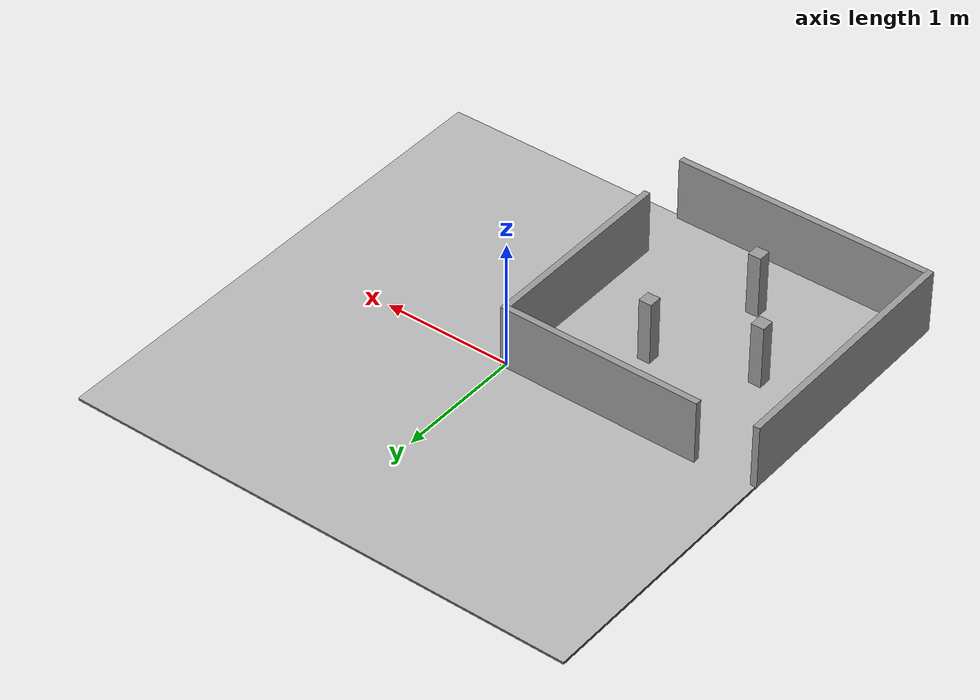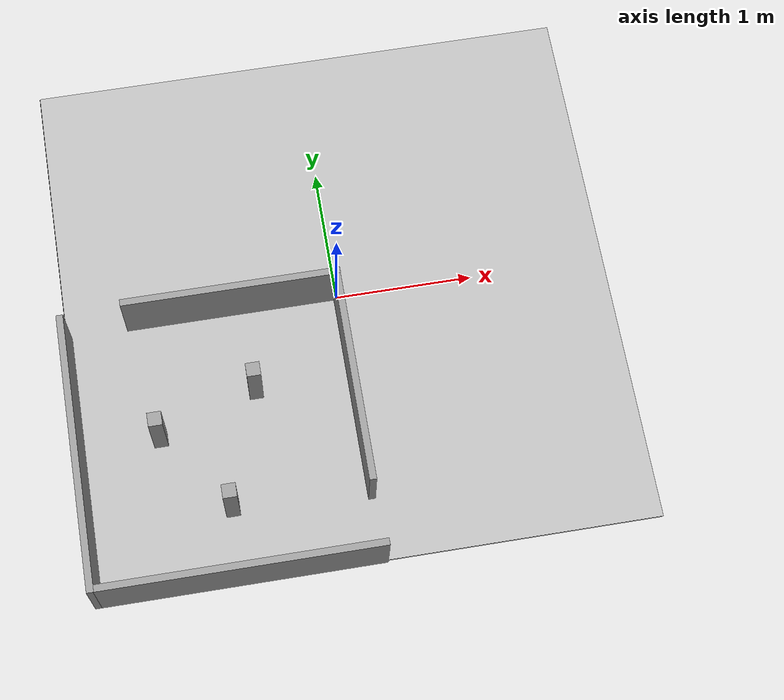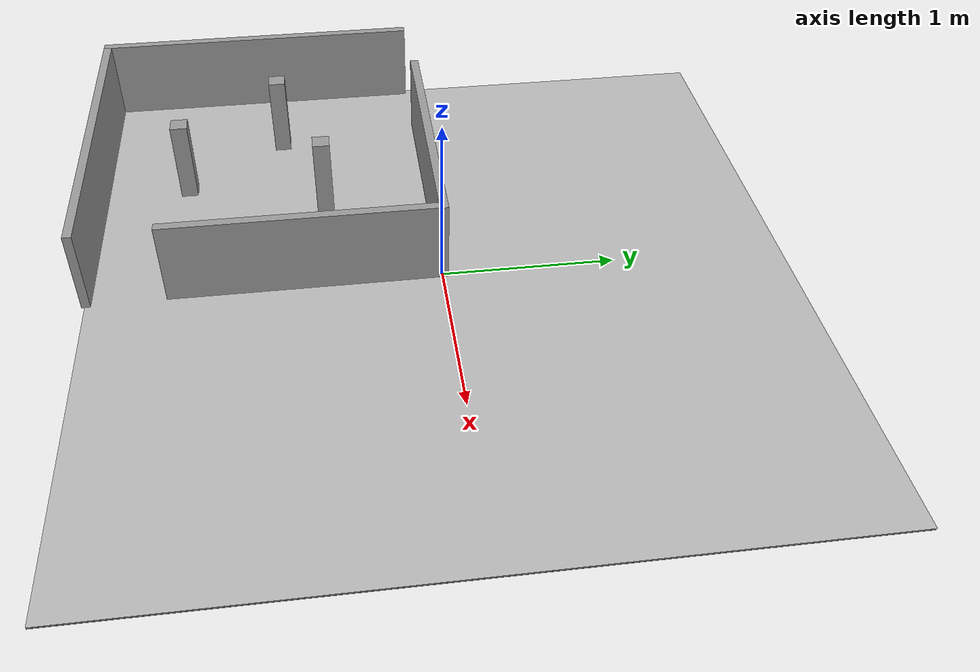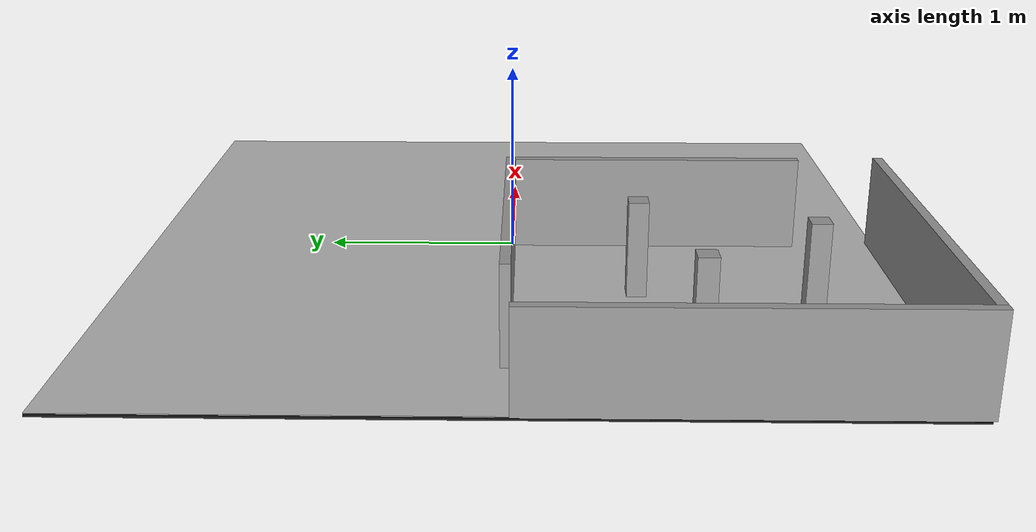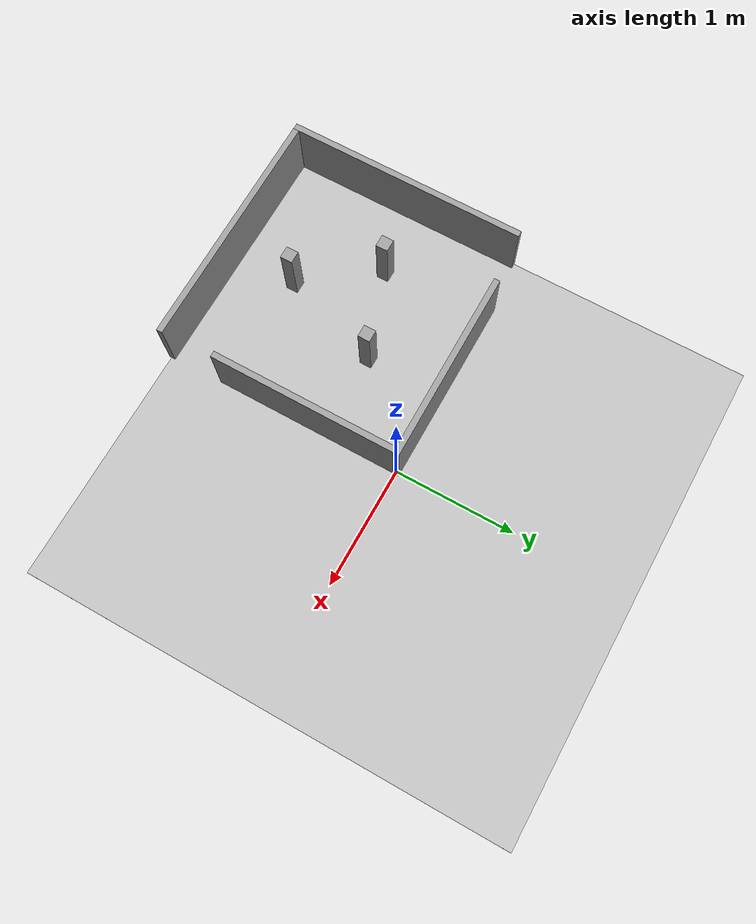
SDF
<sdf version="1.6">
 <world name="default">
  <scene>
   <ambient>0 0 0 1</ambient>
   <shadows>0</shadows>
   <grid>0</grid>
   <background>0.7 0.7 0.7 1</background>
  </scene>
  <model name="course">
   <static>1</static>
   <link name="course_link">
    <collision name="course_collision">
     <geometry><plane><normal>0 0 1</normal><size>4 4</size></plane></geometry>
     <surface><friction><ode><mu>100</mu><mu2>50</mu2></ode></friction></surface>
    </collision>
    <visual name="course_visual">
     <cast_shadows>0</cast_shadows>
     <geometry><plane><normal>0 0 1</normal><size>4 4</size></plane></geometry>
     <material>
      <script>
       <uri>model://course/materials/scripts</uri>
       <uri>model://course/materials/textures</uri>
       <name>course</name>
      </script>
     </material>
    </visual>
   </link>
   <pose>0 0 0 0 -0 1.5708</pose>
  </model>
  <light name="sun" type="directional">
   <pose>0 0 10 0 -0 0</pose>
   <diffuse>0.8 0.8 0.8 1</diffuse>
   <specular>0.1 0.1 0.1 1</specular>
   <attenuation>
    <range>1000</range>
    <constant>0.9</constant>
    <linear>0.01</linear>
    <quadratic>0.001</quadratic>
   </attenuation>
   <direction>-0.5 0.5 -1</direction>
  </light>
  <model name="ground2">
   <pose>-0.003421 -0.000423 -0.01 0 -0 0</pose>
   <static>1</static>
   <link name="ground">
    <collision name="ground_coll"><geometry><box><size>4 4 0.01</size></box></geometry></collision>
    <visual name="ground_vis">
     <geometry><box><size>4 4 0.01</size></box></geometry>
     <material>
      <script><uri>file://media/materials/scripts/gazebo.material</uri><name>Gazebo/FlatBlack</name></script>
     </material>
    </visual>
   </link>
  </model>
  <gravity>0 0 -9.8</gravity>
  <magnetic_field>6e-06 2.3e-05 -4.2e-05</magnetic_field>
  <atmosphere type="adiabatic"/>
  <physics name="default_physics" default="0" type="ode">
   <max_step_size>0.001</max_step_size>
   <real_time_factor>1</real_time_factor>
   <real_time_update_rate>1000</real_time_update_rate>
  </physics>
  <spherical_coordinates>
   <surface_model>EARTH_WGS84</surface_model>
   <latitude_deg>0</latitude_deg>
   <longitude_deg>0</longitude_deg>
   <elevation>0</elevation>
   <heading_deg>0</heading_deg>
  </spherical_coordinates>
  <light name="user_point_light_2" type="point">
   <pose>-0.948146 0.604519 1 0 -0 0</pose>
   <diffuse>0.5 0.5 0.5 1</diffuse>
   <specular>0.1 0.1 0.1 1</specular>
   <attenuation>
    <range>20</range>
    <constant>0.5</constant>
    <linear>0.01</linear>
    <quadratic>0.001</quadratic>
   </attenuation>
   <cast_shadows>0</cast_shadows>
   <direction>0 0 -1</direction>
  </light>
  <light name="user_point_light_6" type="point">
   <pose>1.63854 1.69565 1 0 -0 0</pose>
   <diffuse>0.5 0.5 0.5 1</diffuse>
   <specular>0.1 0.1 0.1 1</specular>
   <attenuation>
    <range>20</range>
    <constant>0.5</constant>
    <linear>0.01</linear>
    <quadratic>0.001</quadratic>
   </attenuation>
   <cast_shadows>0</cast_shadows>
   <direction>0 0 -1</direction>
  </light>
  <light name="user_point_light_7" type="point">
   <pose>0.42 -3.31 1 0 -0 0</pose>
   <diffuse>0.5 0.5 0.5 1</diffuse>
   <specular>0.1 0.1 0.1 1</specular>
   <attenuation>
    <range>20</range>
    <constant>0.5</constant>
    <linear>0.01</linear>
    <quadratic>0.001</quadratic>
   </attenuation>
   <cast_shadows>0</cast_shadows>
   <direction>0 0 -1</direction>
  </light>
  <light name="user_point_light_8" type="point">
   <pose>-1.8 1.5 1 0 -0 0</pose>
   <diffuse>0.5 0.5 0.5 1</diffuse>
   <specular>0.1 0.1 0.1 1</specular>
   <attenuation>
    <range>20</range>
    <constant>0.5</constant>
    <linear>0.01</linear>
    <quadratic>0.001</quadratic>
   </attenuation>
   <cast_shadows>0</cast_shadows>
   <direction>0 0 -1</direction>
  </light>
  <model name="obstacle_course">
   <link name="link">
    <pose>-0.137296 0.118518 0 0 -0 0</pose>
    <inertial>
     <mass>1</mass>
     <inertia>
      <ixx>0.166667</ixx>
      <ixy>0</ixy>
      <ixz>0</ixz>
      <iyy>0.166667</iyy>
      <iyz>0</iyz>
      <izz>0.166667</izz>
     </inertia>
    </inertial>
    <visual name="visual">
     <geometry><box><size>0.1 0.1 0.5</size></box></geometry>
     <material>
      <script><name>Gazebo/Grey</name><uri>file://media/materials/scripts/gazebo.material</uri></script>
      <ambient>0.3 0.3 0.3 1</ambient>
      <diffuse>0.7 0.7 0.7 1</diffuse>
      <specular>0.01 0.01 0.01 1</specular>
      <emissive>0 0 0 1</emissive>
      <shader type="vertex"><normal_map>__default__</normal_map></shader>
     </material>
    </visual>
    <collision name="collision">
     <geometry><box><size>0.1 0.1 0.5</size></box></geometry>
     <surface>
      <friction>
       <ode><mu>1</mu><mu2>1</mu2><fdir1>0 0 0</fdir1><slip1>0</slip1><slip2>0</slip2></ode>
       <torsional>
        <coefficient>1</coefficient>
        <patch_radius>0</patch_radius>
        <surface_radius>0</surface_radius>
        <use_patch_radius>1</use_patch_radius>
        <ode><slip>0</slip></ode>
       </torsional>
      </friction>
      <bounce><restitution_coefficient>0</restitution_coefficient><threshold>1e+06</threshold></bounce>
      <contact>
       <collide_without_contact>0</collide_without_contact>
       <collide_without_contact_bitmask>1</collide_without_contact_bitmask>
       <collide_bitmask>1</collide_bitmask>
       <ode>
        <soft_cfm>0</soft_cfm>
        <soft_erp>0.2</soft_erp>
        <kp>1e+13</kp>
        <kd>1</kd>
        <max_vel>0.01</max_vel>
        <min_depth>0</min_depth>
       </ode>
       <bullet>
        <split_impulse>1</split_impulse>
        <split_impulse_penetration_threshold>-0.01</split_impulse_penetration_threshold>
        <soft_cfm>0</soft_cfm>
        <soft_erp>0.2</soft_erp>
        <kp>1e+13</kp>
        <kd>1</kd>
       </bullet>
      </contact>
     </surface>
    </collision>
   </link>
   <link name="link_clone">
    <pose>0.299395 -0.467804 -0 0 -0 0</pose>
    <inertial>
     <mass>1</mass>
     <inertia>
      <ixx>0.166667</ixx>
      <ixy>0</ixy>
      <ixz>0</ixz>
      <iyy>0.166667</iyy>
      <iyz>0</iyz>
      <izz>0.166667</izz>
     </inertia>
    </inertial>
    <visual name="visual">
     <geometry><box><size>0.1 0.1 0.5</size></box></geometry>
     <material>
      <script><name>Gazebo/Grey</name><uri>file://media/materials/scripts/gazebo.material</uri></script>
      <ambient>0.3 0.3 0.3 1</ambient>
      <diffuse>0.7 0.7 0.7 1</diffuse>
      <specular>0.01 0.01 0.01 1</specular>
      <emissive>0 0 0 1</emissive>
      <shader type="vertex"><normal_map>__default__</normal_map></shader>
     </material>
    </visual>
    <collision name="collision">
     <geometry><box><size>0.1 0.1 0.5</size></box></geometry>
     <surface>
      <friction>
       <ode><mu>1</mu><mu2>1</mu2><fdir1>0 0 0</fdir1><slip1>0</slip1><slip2>0</slip2></ode>
       <torsional>
        <coefficient>1</coefficient>
        <patch_radius>0</patch_radius>
        <surface_radius>0</surface_radius>
        <use_patch_radius>1</use_patch_radius>
        <ode><slip>0</slip></ode>
       </torsional>
      </friction>
      <bounce><restitution_coefficient>0</restitution_coefficient><threshold>1e+06</threshold></bounce>
      <contact>
       <collide_without_contact>0</collide_without_contact>
       <collide_without_contact_bitmask>1</collide_without_contact_bitmask>
       <collide_bitmask>1</collide_bitmask>
       <ode>
        <soft_cfm>0</soft_cfm>
        <soft_erp>0.2</soft_erp>
        <kp>1e+13</kp>
        <kd>1</kd>
        <max_vel>0.01</max_vel>
        <min_depth>0</min_depth>
       </ode>
       <bullet>
        <split_impulse>1</split_impulse>
        <split_impulse_penetration_threshold>-0.01</split_impulse_penetration_threshold>
        <soft_cfm>0</soft_cfm>
        <soft_erp>0.2</soft_erp>
        <kp>1e+13</kp>
        <kd>1</kd>
       </bullet>
      </contact>
     </surface>
    </collision>
   </link>
   <link name="link_clone_0">
    <pose>0.584378 0.36966 -0 0 -0 0</pose>
    <inertial>
     <mass>1</mass>
     <inertia>
      <ixx>0.166667</ixx>
      <ixy>0</ixy>
      <ixz>0</ixz>
      <iyy>0.166667</iyy>
      <iyz>0</iyz>
      <izz>0.166667</izz>
     </inertia>
    </inertial>
    <visual name="visual">
     <geometry><box><size>0.1 0.1 0.5</size></box></geometry>
     <material>
      <script><name>Gazebo/Grey</name><uri>file://media/materials/scripts/gazebo.material</uri></script>
      <ambient>0.3 0.3 0.3 1</ambient>
      <diffuse>0.7 0.7 0.7 1</diffuse>
      <specular>0.01 0.01 0.01 1</specular>
      <emissive>0 0 0 1</emissive>
      <shader type="vertex"><normal_map>__default__</normal_map></shader>
     </material>
    </visual>
    <collision name="collision">
     <geometry><box><size>0.1 0.1 0.5</size></box></geometry>
     <surface>
      <friction>
       <ode><mu>1</mu><mu2>1</mu2><fdir1>0 0 0</fdir1><slip1>0</slip1><slip2>0</slip2></ode>
       <torsional>
        <coefficient>1</coefficient>
        <patch_radius>0</patch_radius>
        <surface_radius>0</surface_radius>
        <use_patch_radius>1</use_patch_radius>
        <ode><slip>0</slip></ode>
       </torsional>
      </friction>
      <bounce><restitution_coefficient>0</restitution_coefficient><threshold>1e+06</threshold></bounce>
      <contact>
       <collide_without_contact>0</collide_without_contact>
       <collide_without_contact_bitmask>1</collide_without_contact_bitmask>
       <collide_bitmask>1</collide_bitmask>
       <ode>
        <soft_cfm>0</soft_cfm>
        <soft_erp>0.2</soft_erp>
        <kp>1e+13</kp>
        <kd>1</kd>
        <max_vel>0.01</max_vel>
        <min_depth>0</min_depth>
       </ode>
       <bullet>
        <split_impulse>1</split_impulse>
        <split_impulse_penetration_threshold>-0.01</split_impulse_penetration_threshold>
        <soft_cfm>0</soft_cfm>
        <soft_erp>0.2</soft_erp>
        <kp>1e+13</kp>
        <kd>1</kd>
       </bullet>
      </contact>
     </surface>
    </collision>
   </link>
   <static>0</static>
   <pose>-1.27918 -1.00294 0.25 -1e-06 5e-06 -1e-06</pose>
  </model>
  <model name="obstacle_course_wall">
   <link name="Wall_12">
    <pose>-1.02078 0.019883 0 0 -0 1.5708</pose>
    <inertial>
     <mass>1</mass>
     <inertia><ixx>1</ixx><ixy>0</ixy><ixz>0</ixz><iyy>1</iyy><iyz>0</iyz><izz>1</izz></inertia>
    </inertial>
    <visual name="Wall_12_Visual">
     <pose>0 0 0.25 0 -0 0</pose>
     <geometry><box><size>2 0.05 0.5</size></box></geometry>
     <material>
      <script><uri>file://media/materials/scripts/gazebo.material</uri><name>Gazebo/Grey</name></script>
      <ambient>1 1 1 1</ambient>
      <diffuse>0.7 0.7 0.7 1</diffuse>
      <specular>0.01 0.01 0.01 1</specular>
      <emissive>0 0 0 1</emissive>
      <shader type="vertex"><normal_map>__default__</normal_map></shader>
     </material>
    </visual>
    <collision name="Wall_12_Collision">
     <pose>0 0 0.25 0 -0 0</pose>
     <geometry><box><size>2 0.05 0.5</size></box></geometry>
     <surface>
      <friction>
       <ode><mu>1</mu><mu2>1</mu2><fdir1>0 0 0</fdir1><slip1>0</slip1><slip2>0</slip2></ode>
       <torsional>
        <coefficient>1</coefficient>
        <patch_radius>0</patch_radius>
        <surface_radius>0</surface_radius>
        <use_patch_radius>1</use_patch_radius>
        <ode><slip>0</slip></ode>
       </torsional>
      </friction>
      <bounce><restitution_coefficient>0</restitution_coefficient><threshold>1e+06</threshold></bounce>
      <contact>
       <collide_without_contact>0</collide_without_contact>
       <collide_without_contact_bitmask>1</collide_without_contact_bitmask>
       <collide_bitmask>1</collide_bitmask>
       <ode>
        <soft_cfm>0</soft_cfm>
        <soft_erp>0.2</soft_erp>
        <kp>1e+13</kp>
        <kd>1</kd>
        <max_vel>0.01</max_vel>
        <min_depth>0</min_depth>
       </ode>
       <bullet>
        <split_impulse>1</split_impulse>
        <split_impulse_penetration_threshold>-0.01</split_impulse_penetration_threshold>
        <soft_cfm>0</soft_cfm>
        <soft_erp>0.2</soft_erp>
        <kp>1e+13</kp>
        <kd>1</kd>
       </bullet>
      </contact>
     </surface>
    </collision>
   </link>
   <link name="Wall_14">
    <pose>0 -0.95544 0 0 -0 0</pose>
    <inertial>
     <mass>1</mass>
     <inertia><ixx>1</ixx><ixy>0</ixy><ixz>0</ixz><iyy>1</iyy><iyz>0</iyz><izz>1</izz></inertia>
    </inertial>
    <visual name="Wall_14_Visual">
     <pose>0 0 0.25 0 -0 0</pose>
     <geometry><box><size>2.00003 0.05 0.5</size></box></geometry>
     <material>
      <script><uri>file://media/materials/scripts/gazebo.material</uri><name>Gazebo/Grey</name></script>
      <ambient>1 1 1 1</ambient>
      <diffuse>0.7 0.7 0.7 1</diffuse>
      <specular>0.01 0.01 0.01 1</specular>
      <emissive>0 0 0 1</emissive>
      <shader type="vertex"><normal_map>__default__</normal_map></shader>
     </material>
    </visual>
    <collision name="Wall_14_Collision">
     <pose>0 0 0.25 0 -0 0</pose>
     <geometry><box><size>2.00003 0.05 0.5</size></box></geometry>
     <surface>
      <friction>
       <ode><mu>1</mu><mu2>1</mu2><fdir1>0 0 0</fdir1><slip1>0</slip1><slip2>0</slip2></ode>
       <torsional>
        <coefficient>1</coefficient>
        <patch_radius>0</patch_radius>
        <surface_radius>0</surface_radius>
        <use_patch_radius>1</use_patch_radius>
        <ode><slip>0</slip></ode>
       </torsional>
      </friction>
      <bounce><restitution_coefficient>0</restitution_coefficient><threshold>1e+06</threshold></bounce>
      <contact>
       <collide_without_contact>0</collide_without_contact>
       <collide_without_contact_bitmask>1</collide_without_contact_bitmask>
       <collide_bitmask>1</collide_bitmask>
       <ode>
        <soft_cfm>0</soft_cfm>
        <soft_erp>0.2</soft_erp>
        <kp>1e+13</kp>
        <kd>1</kd>
        <max_vel>0.01</max_vel>
        <min_depth>0</min_depth>
       </ode>
       <bullet>
        <split_impulse>1</split_impulse>
        <split_impulse_penetration_threshold>-0.01</split_impulse_penetration_threshold>
        <soft_cfm>0</soft_cfm>
        <soft_erp>0.2</soft_erp>
        <kp>1e+13</kp>
        <kd>1</kd>
       </bullet>
      </contact>
     </surface>
    </collision>
   </link>
   <link name="Wall_16">
    <pose>0.963396 0.253669 0 0 -0 1.5708</pose>
    <inertial>
     <inertia><ixx>0</ixx><ixy>0</ixy><ixz>0</ixz><iyy>0</iyy><iyz>0</iyz><izz>0</izz></inertia>
     <mass>0</mass>
    </inertial>
    <visual name="Wall_16_Visual">
     <pose>0 0 0.25 0 -0 0</pose>
     <geometry><box><size>1.53699 0.05 0.5</size></box></geometry>
     <material>
      <script><uri>file://media/materials/scripts/gazebo.material</uri><name>Gazebo/Grey</name></script>
      <ambient>1 1 1 1</ambient>
      <diffuse>0.7 0.7 0.7 1</diffuse>
      <specular>0.01 0.01 0.01 1</specular>
      <emissive>0 0 0 1</emissive>
      <shader type="vertex"><normal_map>__default__</normal_map></shader>
     </material>
    </visual>
    <collision name="Wall_16_Collision">
     <pose>0 0 0.25 0 -0 0</pose>
     <geometry><box><size>1.53699 0.05 0.5</size></box></geometry>
     <surface>
      <friction>
       <ode><mu>1</mu><mu2>1</mu2><fdir1>0 0 0</fdir1><slip1>0</slip1><slip2>0</slip2></ode>
       <torsional>
        <coefficient>1</coefficient>
        <patch_radius>0</patch_radius>
        <surface_radius>0</surface_radius>
        <use_patch_radius>1</use_patch_radius>
        <ode><slip>0</slip></ode>
       </torsional>
      </friction>
      <bounce><restitution_coefficient>0</restitution_coefficient><threshold>1e+06</threshold></bounce>
      <contact>
       <collide_without_contact>0</collide_without_contact>
       <collide_without_contact_bitmask>1</collide_without_contact_bitmask>
       <collide_bitmask>1</collide_bitmask>
       <ode>
        <soft_cfm>0</soft_cfm>
        <soft_erp>0.2</soft_erp>
        <kp>1e+13</kp>
        <kd>1</kd>
        <max_vel>0.01</max_vel>
        <min_depth>0</min_depth>
       </ode>
       <bullet>
        <split_impulse>1</split_impulse>
        <split_impulse_penetration_threshold>-0.01</split_impulse_penetration_threshold>
        <soft_cfm>0</soft_cfm>
        <soft_erp>0.2</soft_erp>
        <kp>1e+13</kp>
        <kd>1</kd>
       </bullet>
      </contact>
     </surface>
    </collision>
   </link>
   <link name="Wall_17">
    <pose>0.2 1.045 0 0 -0 3.14159</pose>
    <inertial>
     <mass>1</mass>
     <inertia><ixx>1</ixx><ixy>0</ixy><ixz>0</ixz><iyy>1</iyy><iyz>0</iyz><izz>1</izz></inertia>
    </inertial>
    <visual name="Wall_17_Visual">
     <pose>0 0 0.25 0 -0 0</pose>
     <geometry><box><size>1.58 0.05 0.5</size></box></geometry>
     <material>
      <script><uri>file://media/materials/scripts/gazebo.material</uri><name>Gazebo/Grey</name></script>
      <ambient>1 1 1 1</ambient>
      <diffuse>0.7 0.7 0.7 1</diffuse>
      <specular>0.01 0.01 0.01 1</specular>
      <emissive>0 0 0 1</emissive>
      <shader type="vertex"><normal_map>__default__</normal_map></shader>
     </material>
    </visual>
    <collision name="Wall_17_Collision">
     <pose>0 0 0.25 0 -0 0</pose>
     <geometry><box><size>1.58 0.05 0.5</size></box></geometry>
     <surface>
      <friction>
       <ode><mu>1</mu><mu2>1</mu2><fdir1>0 0 0</fdir1><slip1>0</slip1><slip2>0</slip2></ode>
       <torsional>
        <coefficient>1</coefficient>
        <patch_radius>0</patch_radius>
        <surface_radius>0</surface_radius>
        <use_patch_radius>1</use_patch_radius>
        <ode><slip>0</slip></ode>
       </torsional>
      </friction>
      <bounce><restitution_coefficient>0</restitution_coefficient><threshold>1e+06</threshold></bounce>
      <contact>
       <collide_without_contact>0</collide_without_contact>
       <collide_without_contact_bitmask>1</collide_without_contact_bitmask>
       <collide_bitmask>1</collide_bitmask>
       <ode>
        <soft_cfm>0</soft_cfm>
        <soft_erp>0.2</soft_erp>
        <kp>1e+13</kp>
        <kd>1</kd>
        <max_vel>0.01</max_vel>
        <min_depth>0</min_depth>
       </ode>
       <bullet>
        <split_impulse>1</split_impulse>
        <split_impulse_penetration_threshold>-0.01</split_impulse_penetration_threshold>
        <soft_cfm>0</soft_cfm>
        <soft_erp>0.2</soft_erp>
        <kp>1e+13</kp>
        <kd>1</kd>
       </bullet>
      </contact>
     </surface>
    </collision>
   </link>
   <static>1</static>
   <pose>-0.9647 -1.03574 0 0 -0 0</pose>
  </model>
 </world>
</sdf>
